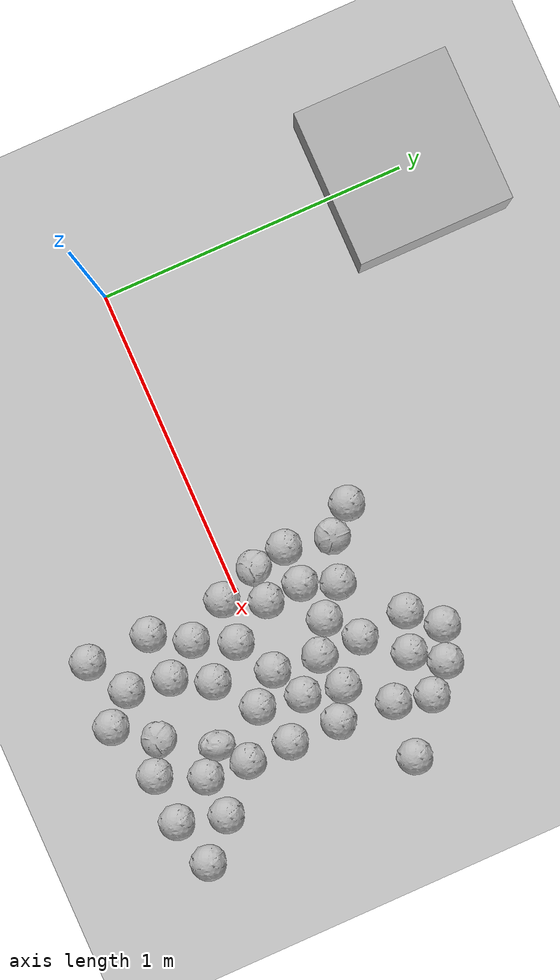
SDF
<sdf version="1.6">
 <world name="default">
  <model name="ground_plane">
   <static>1</static>
   <link name="link">
    <collision name="collision">
     <geometry><plane><normal>0 0 1</normal><size>100 100</size></plane></geometry>
     <surface>
      <contact><collide_bitmask>65535</collide_bitmask></contact>
      <friction><ode><mu>100</mu><mu2>50</mu2></ode></friction>
     </surface>
    </collision>
    <visual name="visual">
     <cast_shadows>0</cast_shadows>
     <geometry><plane><normal>0 0 1</normal><size>100 100</size></plane></geometry>
     <material>
      <script><uri>file://media/materials/scripts/gazebo.material</uri><name>Gazebo/Grey</name></script>
     </material>
    </visual>
   </link>
  </model>
  <light name="sun" type="directional">
   <pose>0 0 10 0 -0 0</pose>
   <diffuse>0.8 0.8 0.8 1</diffuse>
   <specular>0.2 0.2 0.2 1</specular>
   <attenuation>
    <range>1000</range>
    <constant>0.9</constant>
    <linear>0.01</linear>
    <quadratic>0.001</quadratic>
   </attenuation>
   <direction>-0.5 0.1 -0.9</direction>
  </light>
  <model name="mytable">
   <link name="link">
    <inertial>
     <mass>1</mass>
     <inertia><ixx>0.083</ixx><ixy>0</ixy><ixz>0</ixz><iyy>0.083</iyy><iyz>0</iyz><izz>0.083</izz></inertia>
    </inertial>
    <collision name="collision"><geometry><box><size>0.5 0.5 0.2</size></box></geometry></collision>
    <visual name="visual"><geometry><box><size>0.5 0.5 0.2</size></box></geometry></visual>
   </link>
   <pose>0 1 0.1 0 -0 0</pose>
  </model>
  <gravity>0 0 -9.8</gravity>
  <magnetic_field>6e-06 2.3e-05 -4.2e-05</magnetic_field>
  <atmosphere type="adiabatic"/>
  <physics name="default_physics" default="0" type="ode">
   <max_step_size>0.001</max_step_size>
   <real_time_factor>1</real_time_factor>
   <real_time_update_rate>1000</real_time_update_rate>
  </physics>
  <scene><ambient>0.4 0.4 0.4 1</ambient><background>0.7 0.7 0.7 1</background><shadows>1</shadows></scene>
  <audio><device>default</device></audio>
  <spherical_coordinates>
   <surface_model>EARTH_WGS84</surface_model>
   <latitude_deg>0</latitude_deg>
   <longitude_deg>0</longitude_deg>
   <elevation>0</elevation>
   <heading_deg>0</heading_deg>
  </spherical_coordinates>
  <model name="cabbage_clone_0">
   <link name="link">
    <inertial>
     <mass>1.5</mass>
     <inertia>
      <ixx>0.0017004</ixx>
      <ixy>0</ixy>
      <ixz>0</ixz>
      <iyy>0.0019839</iyy>
      <iyz>0</iyz>
      <izz>0.0016659</izz>
     </inertia>
    </inertial>
    <collision name="collision">
     <geometry>
      <mesh><scale>0.001 0.001 0.001</scale><uri>model://cabbage/cabbage_single.dae</uri></mesh>
     </geometry>
     <surface>
      <friction><ode><mu>0.6</mu><mu2>0.6</mu2></ode></friction>
      <contact><ode><max_vel>0.1</max_vel><min_depth>0.0001</min_depth></ode></contact>
     </surface>
    </collision>
    <visual name="visual">
     <geometry>
      <mesh><scale>0.001 0.001 0.001</scale><uri>model://cabbage/cabbage_single.dae</uri></mesh>
     </geometry>
     <material><script><uri>model://cabbage/texture.material</uri><name>CabbageTexture</name></script></material>
    </visual>
   </link>
   <pose>1.52906 0.426172 0.051369 1.57002 0.009069 0.30066</pose>
  </model>
  <model name="cabbage_clone_1">
   <link name="link">
    <inertial>
     <mass>1.5</mass>
     <inertia>
      <ixx>0.0017004</ixx>
      <ixy>0</ixy>
      <ixz>0</ixz>
      <iyy>0.0019839</iyy>
      <iyz>0</iyz>
      <izz>0.0016659</izz>
     </inertia>
    </inertial>
    <collision name="collision">
     <geometry>
      <mesh><scale>0.001 0.001 0.001</scale><uri>model://cabbage/cabbage_single.dae</uri></mesh>
     </geometry>
     <surface>
      <friction><ode><mu>0.6</mu><mu2>0.6</mu2></ode></friction>
      <contact><ode><max_vel>0.1</max_vel><min_depth>0.0001</min_depth></ode></contact>
     </surface>
    </collision>
    <visual name="visual">
     <geometry>
      <mesh><scale>0.001 0.001 0.001</scale><uri>model://cabbage/cabbage_single.dae</uri></mesh>
     </geometry>
     <material><script><uri>model://cabbage/texture.material</uri><name>CabbageTexture</name></script></material>
    </visual>
   </link>
   <pose>1.49952 0.310143 0.051511 1.57609 0.008615 0.501607</pose>
  </model>
  <model name="cabbage_clone_2">
   <link name="link">
    <inertial>
     <mass>1.5</mass>
     <inertia>
      <ixx>0.0017004</ixx>
      <ixy>0</ixy>
      <ixz>0</ixz>
      <iyy>0.0019839</iyy>
      <iyz>0</iyz>
      <izz>0.0016659</izz>
     </inertia>
    </inertial>
    <collision name="collision">
     <geometry>
      <mesh><scale>0.001 0.001 0.001</scale><uri>model://cabbage/cabbage_single.dae</uri></mesh>
     </geometry>
     <surface>
      <friction><ode><mu>0.6</mu><mu2>0.6</mu2></ode></friction>
      <contact><ode><max_vel>0.1</max_vel><min_depth>0.0001</min_depth></ode></contact>
     </surface>
    </collision>
    <visual name="visual">
     <geometry>
      <mesh><scale>0.001 0.001 0.001</scale><uri>model://cabbage/cabbage_single.dae</uri></mesh>
     </geometry>
     <material><script><uri>model://cabbage/texture.material</uri><name>CabbageTexture</name></script></material>
    </visual>
   </link>
   <pose>1.39189 0.188309 0.051485 1.57221 0.00887 0.735737</pose>
  </model>
  <model name="cabbage_clone_3">
   <link name="link">
    <inertial>
     <mass>1.5</mass>
     <inertia>
      <ixx>0.0017004</ixx>
      <ixy>0</ixy>
      <ixz>0</ixz>
      <iyy>0.0019839</iyy>
      <iyz>0</iyz>
      <izz>0.0016659</izz>
     </inertia>
    </inertial>
    <collision name="collision">
     <geometry>
      <mesh><scale>0.001 0.001 0.001</scale><uri>model://cabbage/cabbage_single.dae</uri></mesh>
     </geometry>
     <surface>
      <friction><ode><mu>0.6</mu><mu2>0.6</mu2></ode></friction>
      <contact><ode><max_vel>0.1</max_vel><min_depth>0.0001</min_depth></ode></contact>
     </surface>
    </collision>
    <visual name="visual">
     <geometry>
      <mesh><scale>0.001 0.001 0.001</scale><uri>model://cabbage/cabbage_single.dae</uri></mesh>
     </geometry>
     <material><script><uri>model://cabbage/texture.material</uri><name>CabbageTexture</name></script></material>
    </visual>
   </link>
   <pose>1.38151 0.415774 0.051507 1.57635 0.008902 0.394124</pose>
  </model>
  <model name="cabbage_clone_4">
   <link name="link">
    <inertial>
     <mass>1.5</mass>
     <inertia>
      <ixx>0.0017004</ixx>
      <ixy>0</ixy>
      <ixz>0</ixz>
      <iyy>0.0019839</iyy>
      <iyz>0</iyz>
      <izz>0.0016659</izz>
     </inertia>
    </inertial>
    <collision name="collision">
     <geometry>
      <mesh><scale>0.001 0.001 0.001</scale><uri>model://cabbage/cabbage_single.dae</uri></mesh>
     </geometry>
     <surface>
      <friction><ode><mu>0.6</mu><mu2>0.6</mu2></ode></friction>
      <contact><ode><max_vel>0.1</max_vel><min_depth>0.0001</min_depth></ode></contact>
     </surface>
    </collision>
    <visual name="visual">
     <geometry>
      <mesh><scale>0.001 0.001 0.001</scale><uri>model://cabbage/cabbage_single.dae</uri></mesh>
     </geometry>
     <material><script><uri>model://cabbage/texture.material</uri><name>CabbageTexture</name></script></material>
    </visual>
   </link>
   <pose>1.27797 0.297075 0.051506 1.57631 0.009056 0.109475</pose>
  </model>
  <model name="cabbage_clone_5">
   <link name="link">
    <inertial>
     <mass>1.5</mass>
     <inertia>
      <ixx>0.0017004</ixx>
      <ixy>0</ixy>
      <ixz>0</ixz>
      <iyy>0.0019839</iyy>
      <iyz>0</iyz>
      <izz>0.0016659</izz>
     </inertia>
    </inertial>
    <collision name="collision">
     <geometry>
      <mesh><scale>0.001 0.001 0.001</scale><uri>model://cabbage/cabbage_single.dae</uri></mesh>
     </geometry>
     <surface>
      <friction><ode><mu>0.6</mu><mu2>0.6</mu2></ode></friction>
      <contact><ode><max_vel>0.1</max_vel><min_depth>0.0001</min_depth></ode></contact>
     </surface>
    </collision>
    <visual name="visual">
     <geometry>
      <mesh><scale>0.001 0.001 0.001</scale><uri>model://cabbage/cabbage_single.dae</uri></mesh>
     </geometry>
     <material><script><uri>model://cabbage/texture.material</uri><name>CabbageTexture</name></script></material>
    </visual>
   </link>
   <pose>1.48674 0.130875 0.052208 1.6565 0.033004 -0.023879</pose>
  </model>
  <model name="cabbage_clone_8">
   <link name="link">
    <inertial>
     <mass>1.5</mass>
     <inertia>
      <ixx>0.0017004</ixx>
      <ixy>0</ixy>
      <ixz>0</ixz>
      <iyy>0.0019839</iyy>
      <iyz>0</iyz>
      <izz>0.0016659</izz>
     </inertia>
    </inertial>
    <collision name="collision">
     <geometry>
      <mesh><scale>0.001 0.001 0.001</scale><uri>model://cabbage/cabbage_single.dae</uri></mesh>
     </geometry>
     <surface>
      <friction><ode><mu>0.6</mu><mu2>0.6</mu2></ode></friction>
      <contact><ode><max_vel>0.1</max_vel><min_depth>0.0001</min_depth></ode></contact>
     </surface>
    </collision>
    <visual name="visual">
     <geometry>
      <mesh><scale>0.001 0.001 0.001</scale><uri>model://cabbage/cabbage_single.dae</uri></mesh>
     </geometry>
     <material><script><uri>model://cabbage/texture.material</uri><name>CabbageTexture</name></script></material>
    </visual>
   </link>
   <pose>1.45077 0.505983 0.051513 1.57591 0.008671 0.446285</pose>
  </model>
  <model name="cabbage_clone_9">
   <link name="link">
    <inertial>
     <mass>1.5</mass>
     <inertia>
      <ixx>0.0017004</ixx>
      <ixy>0</ixy>
      <ixz>0</ixz>
      <iyy>0.0019839</iyy>
      <iyz>0</iyz>
      <izz>0.0016659</izz>
     </inertia>
    </inertial>
    <collision name="collision">
     <geometry>
      <mesh><scale>0.001 0.001 0.001</scale><uri>model://cabbage/cabbage_single.dae</uri></mesh>
     </geometry>
     <surface>
      <friction><ode><mu>0.6</mu><mu2>0.6</mu2></ode></friction>
      <contact><ode><max_vel>0.1</max_vel><min_depth>0.0001</min_depth></ode></contact>
     </surface>
    </collision>
    <visual name="visual">
     <geometry>
      <mesh><scale>0.001 0.001 0.001</scale><uri>model://cabbage/cabbage_single.dae</uri></mesh>
     </geometry>
     <material><script><uri>model://cabbage/texture.material</uri><name>CabbageTexture</name></script></material>
    </visual>
   </link>
   <pose>1.26155 0.455643 0.051426 1.57583 0.009737 0.402558</pose>
  </model>
  <model name="cabbage_clone_10">
   <link name="link">
    <inertial>
     <mass>1.5</mass>
     <inertia>
      <ixx>0.0017004</ixx>
      <ixy>0</ixy>
      <ixz>0</ixz>
      <iyy>0.0019839</iyy>
      <iyz>0</iyz>
      <izz>0.0016659</izz>
     </inertia>
    </inertial>
    <collision name="collision">
     <geometry>
      <mesh><scale>0.001 0.001 0.001</scale><uri>model://cabbage/cabbage_single.dae</uri></mesh>
     </geometry>
     <surface>
      <friction><ode><mu>0.6</mu><mu2>0.6</mu2></ode></friction>
      <contact><ode><max_vel>0.1</max_vel><min_depth>0.0001</min_depth></ode></contact>
     </surface>
    </collision>
    <visual name="visual">
     <geometry>
      <mesh><scale>0.001 0.001 0.001</scale><uri>model://cabbage/cabbage_single.dae</uri></mesh>
     </geometry>
     <material><script><uri>model://cabbage/texture.material</uri><name>CabbageTexture</name></script></material>
    </visual>
   </link>
   <pose>1.2775 0.159651 0.051508 1.57634 0.008797 0.888912</pose>
  </model>
  <model name="cabbage_clone_12">
   <link name="link">
    <inertial>
     <mass>1.5</mass>
     <inertia>
      <ixx>0.0017004</ixx>
      <ixy>0</ixy>
      <ixz>0</ixz>
      <iyy>0.0019839</iyy>
      <iyz>0</iyz>
      <izz>0.0016659</izz>
     </inertia>
    </inertial>
    <collision name="collision">
     <geometry>
      <mesh><scale>0.001 0.001 0.001</scale><uri>model://cabbage/cabbage_single.dae</uri></mesh>
     </geometry>
     <surface>
      <friction><ode><mu>0.6</mu><mu2>0.6</mu2></ode></friction>
      <contact><ode><max_vel>0.1</max_vel><min_depth>0.0001</min_depth></ode></contact>
     </surface>
    </collision>
    <visual name="visual">
     <geometry>
      <mesh><scale>0.001 0.001 0.001</scale><uri>model://cabbage/cabbage_single.dae</uri></mesh>
     </geometry>
     <material><script><uri>model://cabbage/texture.material</uri><name>CabbageTexture</name></script></material>
    </visual>
   </link>
   <pose>1.18199 0.219757 0.051508 1.57628 0.008874 0.418808</pose>
  </model>
  <model name="cabbage_clone_16">
   <link name="link">
    <inertial>
     <mass>1.5</mass>
     <inertia>
      <ixx>0.0017004</ixx>
      <ixy>0</ixy>
      <ixz>0</ixz>
      <iyy>0.0019839</iyy>
      <iyz>0</iyz>
      <izz>0.0016659</izz>
     </inertia>
    </inertial>
    <collision name="collision">
     <geometry>
      <mesh><scale>0.001 0.001 0.001</scale><uri>model://cabbage/cabbage_single.dae</uri></mesh>
     </geometry>
     <surface>
      <friction><ode><mu>0.6</mu><mu2>0.6</mu2></ode></friction>
      <contact><ode><max_vel>0.1</max_vel><min_depth>0.0001</min_depth></ode></contact>
     </surface>
    </collision>
    <visual name="visual">
     <geometry>
      <mesh><scale>0.001 0.001 0.001</scale><uri>model://cabbage/cabbage_single.dae</uri></mesh>
     </geometry>
     <material><script><uri>model://cabbage/texture.material</uri><name>CabbageTexture</name></script></material>
    </visual>
   </link>
   <pose>1.34468 0.543311 0.051508 1.57638 0.008858 0.46186</pose>
  </model>
  <model name="cabbage_clone_17">
   <link name="link">
    <inertial>
     <mass>1.5</mass>
     <inertia>
      <ixx>0.0017004</ixx>
      <ixy>0</ixy>
      <ixz>0</ixz>
      <iyy>0.0019839</iyy>
      <iyz>0</iyz>
      <izz>0.0016659</izz>
     </inertia>
    </inertial>
    <collision name="collision">
     <geometry>
      <mesh><scale>0.001 0.001 0.001</scale><uri>model://cabbage/cabbage_single.dae</uri></mesh>
     </geometry>
     <surface>
      <friction><ode><mu>0.6</mu><mu2>0.6</mu2></ode></friction>
      <contact><ode><max_vel>0.1</max_vel><min_depth>0.0001</min_depth></ode></contact>
     </surface>
    </collision>
    <visual name="visual">
     <geometry>
      <mesh><scale>0.001 0.001 0.001</scale><uri>model://cabbage/cabbage_single.dae</uri></mesh>
     </geometry>
     <material><script><uri>model://cabbage/texture.material</uri><name>CabbageTexture</name></script></material>
    </visual>
   </link>
   <pose>0.960771 0.343214 0.04884 -1.60298 -0.154033 2.96145</pose>
  </model>
  <model name="cabbage_clone_18">
   <link name="link">
    <inertial>
     <mass>1.5</mass>
     <inertia>
      <ixx>0.0017004</ixx>
      <ixy>0</ixy>
      <ixz>0</ixz>
      <iyy>0.0019839</iyy>
      <iyz>0</iyz>
      <izz>0.0016659</izz>
     </inertia>
    </inertial>
    <collision name="collision">
     <geometry>
      <mesh><scale>0.001 0.001 0.001</scale><uri>model://cabbage/cabbage_single.dae</uri></mesh>
     </geometry>
     <surface>
      <friction><ode><mu>0.6</mu><mu2>0.6</mu2></ode></friction>
      <contact><ode><max_vel>0.1</max_vel><min_depth>0.0001</min_depth></ode></contact>
     </surface>
    </collision>
    <visual name="visual">
     <geometry>
      <mesh><scale>0.001 0.001 0.001</scale><uri>model://cabbage/cabbage_single.dae</uri></mesh>
     </geometry>
     <material><script><uri>model://cabbage/texture.material</uri><name>CabbageTexture</name></script></material>
    </visual>
   </link>
   <pose>1.05358 0.194938 0.051508 1.57634 0.00894 0.207987</pose>
  </model>
  <model name="cabbage_clone_19">
   <link name="link">
    <inertial>
     <mass>1.5</mass>
     <inertia>
      <ixx>0.0017004</ixx>
      <ixy>0</ixy>
      <ixz>0</ixz>
      <iyy>0.0019839</iyy>
      <iyz>0</iyz>
      <izz>0.0016659</izz>
     </inertia>
    </inertial>
    <collision name="collision">
     <geometry>
      <mesh><scale>0.001 0.001 0.001</scale><uri>model://cabbage/cabbage_single.dae</uri></mesh>
     </geometry>
     <surface>
      <friction><ode><mu>0.6</mu><mu2>0.6</mu2></ode></friction>
      <contact><ode><max_vel>0.1</max_vel><min_depth>0.0001</min_depth></ode></contact>
     </surface>
    </collision>
    <visual name="visual">
     <geometry>
      <mesh><scale>0.001 0.001 0.001</scale><uri>model://cabbage/cabbage_single.dae</uri></mesh>
     </geometry>
     <material><script><uri>model://cabbage/texture.material</uri><name>CabbageTexture</name></script></material>
    </visual>
   </link>
   <pose>1.09699 0.302025 0.051508 1.57627 0.008802 0.674136</pose>
  </model>
  <model name="cabbage_clone_22">
   <link name="link">
    <inertial>
     <mass>1.5</mass>
     <inertia>
      <ixx>0.0017004</ixx>
      <ixy>0</ixy>
      <ixz>0</ixz>
      <iyy>0.0019839</iyy>
      <iyz>0</iyz>
      <izz>0.0016659</izz>
     </inertia>
    </inertial>
    <collision name="collision">
     <geometry>
      <mesh><scale>0.001 0.001 0.001</scale><uri>model://cabbage/cabbage_single.dae</uri></mesh>
     </geometry>
     <surface>
      <friction><ode><mu>0.6</mu><mu2>0.6</mu2></ode></friction>
      <contact><ode><max_vel>0.1</max_vel><min_depth>0.0001</min_depth></ode></contact>
     </surface>
    </collision>
    <visual name="visual">
     <geometry>
      <mesh><scale>0.001 0.001 0.001</scale><uri>model://cabbage/cabbage_single.dae</uri></mesh>
     </geometry>
     <material><script><uri>model://cabbage/texture.material</uri><name>CabbageTexture</name></script></material>
    </visual>
   </link>
   <pose>0.886867 0.426022 0.051504 1.57661 0.009046 0.391852</pose>
  </model>
  <model name="cabbage_clone_24">
   <link name="link">
    <inertial>
     <mass>1.5</mass>
     <inertia>
      <ixx>0.0017004</ixx>
      <ixy>0</ixy>
      <ixz>0</ixz>
      <iyy>0.0019839</iyy>
      <iyz>0</iyz>
      <izz>0.0016659</izz>
     </inertia>
    </inertial>
    <collision name="collision">
     <geometry>
      <mesh><scale>0.001 0.001 0.001</scale><uri>model://cabbage/cabbage_single.dae</uri></mesh>
     </geometry>
     <surface>
      <friction><ode><mu>0.6</mu><mu2>0.6</mu2></ode></friction>
      <contact><ode><max_vel>0.1</max_vel><min_depth>0.0001</min_depth></ode></contact>
     </surface>
    </collision>
    <visual name="visual">
     <geometry>
      <mesh><scale>0.001 0.001 0.001</scale><uri>model://cabbage/cabbage_single.dae</uri></mesh>
     </geometry>
     <material><script><uri>model://cabbage/texture.material</uri><name>CabbageTexture</name></script></material>
    </visual>
   </link>
   <pose>0.932092 0.194565 0.051509 1.57596 0.008905 0.410102</pose>
  </model>
  <model name="cabbage_clone_25">
   <link name="link">
    <inertial>
     <mass>1.5</mass>
     <inertia>
      <ixx>0.0017004</ixx>
      <ixy>0</ixy>
      <ixz>0</ixz>
      <iyy>0.0019839</iyy>
      <iyz>0</iyz>
      <izz>0.0016659</izz>
     </inertia>
    </inertial>
    <collision name="collision">
     <geometry>
      <mesh><scale>0.001 0.001 0.001</scale><uri>model://cabbage/cabbage_single.dae</uri></mesh>
     </geometry>
     <surface>
      <friction><ode><mu>0.6</mu><mu2>0.6</mu2></ode></friction>
      <contact><ode><max_vel>0.1</max_vel><min_depth>0.0001</min_depth></ode></contact>
     </surface>
    </collision>
    <visual name="visual">
     <geometry>
      <mesh><scale>0.001 0.001 0.001</scale><uri>model://cabbage/cabbage_single.dae</uri></mesh>
     </geometry>
     <material><script><uri>model://cabbage/texture.material</uri><name>CabbageTexture</name></script></material>
    </visual>
   </link>
   <pose>0.952005 0.08481 0.051943 -1.66603 0.475066 -2.72059</pose>
  </model>
  <model name="cabbage_clone_26">
   <link name="link">
    <inertial>
     <mass>1.5</mass>
     <inertia>
      <ixx>0.0017004</ixx>
      <ixy>0</ixy>
      <ixz>0</ixz>
      <iyy>0.0019839</iyy>
      <iyz>0</iyz>
      <izz>0.0016659</izz>
     </inertia>
    </inertial>
    <collision name="collision">
     <geometry>
      <mesh><scale>0.001 0.001 0.001</scale><uri>model://cabbage/cabbage_single.dae</uri></mesh>
     </geometry>
     <surface>
      <friction><ode><mu>0.6</mu><mu2>0.6</mu2></ode></friction>
      <contact><ode><max_vel>0.1</max_vel><min_depth>0.0001</min_depth></ode></contact>
     </surface>
    </collision>
    <visual name="visual">
     <geometry>
      <mesh><scale>0.001 0.001 0.001</scale><uri>model://cabbage/cabbage_single.dae</uri></mesh>
     </geometry>
     <material><script><uri>model://cabbage/texture.material</uri><name>CabbageTexture</name></script></material>
    </visual>
   </link>
   <pose>1.0594 0.078366 0.051739 1.55845 0.041561 0.36007</pose>
  </model>
  <model name="cabbage_clone_28">
   <link name="link">
    <inertial>
     <mass>1.5</mass>
     <inertia>
      <ixx>0.0017004</ixx>
      <ixy>0</ixy>
      <ixz>0</ixz>
      <iyy>0.0019839</iyy>
      <iyz>0</iyz>
      <izz>0.0016659</izz>
     </inertia>
    </inertial>
    <collision name="collision">
     <geometry>
      <mesh><scale>0.001 0.001 0.001</scale><uri>model://cabbage/cabbage_single.dae</uri></mesh>
     </geometry>
     <surface>
      <friction><ode><mu>0.6</mu><mu2>0.6</mu2></ode></friction>
      <contact><ode><max_vel>0.1</max_vel><min_depth>0.0001</min_depth></ode></contact>
     </surface>
    </collision>
    <visual name="visual">
     <geometry>
      <mesh><scale>0.001 0.001 0.001</scale><uri>model://cabbage/cabbage_single.dae</uri></mesh>
     </geometry>
     <material><script><uri>model://cabbage/texture.material</uri><name>CabbageTexture</name></script></material>
    </visual>
   </link>
   <pose>1.67971 0.300299 0.051504 1.57662 0.009046 0.391848</pose>
  </model>
  <model name="cabbage_clone_30">
   <link name="link">
    <inertial>
     <mass>1.5</mass>
     <inertia>
      <ixx>0.0017004</ixx>
      <ixy>0</ixy>
      <ixz>0</ixz>
      <iyy>0.0019839</iyy>
      <iyz>0</iyz>
      <izz>0.0016659</izz>
     </inertia>
    </inertial>
    <collision name="collision">
     <geometry>
      <mesh><scale>0.001 0.001 0.001</scale><uri>model://cabbage/cabbage_single.dae</uri></mesh>
     </geometry>
     <surface>
      <friction><ode><mu>0.6</mu><mu2>0.6</mu2></ode></friction>
      <contact><ode><max_vel>0.1</max_vel><min_depth>0.0001</min_depth></ode></contact>
     </surface>
    </collision>
    <visual name="visual">
     <geometry>
      <mesh><scale>0.001 0.001 0.001</scale><uri>model://cabbage/cabbage_single.dae</uri></mesh>
     </geometry>
     <material><script><uri>model://cabbage/texture.material</uri><name>CabbageTexture</name></script></material>
    </visual>
   </link>
   <pose>1.36779 0.064631 0.051504 1.57662 0.009047 0.391844</pose>
  </model>
  <model name="cabbage_clone_20_clone_1">
   <link name="link">
    <inertial>
     <mass>1.5</mass>
     <inertia>
      <ixx>0.0017004</ixx>
      <ixy>0</ixy>
      <ixz>0</ixz>
      <iyy>0.0019839</iyy>
      <iyz>0</iyz>
      <izz>0.0016659</izz>
     </inertia>
    </inertial>
    <collision name="collision">
     <geometry>
      <mesh><scale>0.001 0.001 0.001</scale><uri>model://cabbage/cabbage_single.dae</uri></mesh>
     </geometry>
     <surface>
      <friction><ode><mu>0.6</mu><mu2>0.6</mu2></ode></friction>
      <contact><ode><max_vel>0.1</max_vel><min_depth>0.0001</min_depth></ode></contact>
     </surface>
    </collision>
    <visual name="visual">
     <geometry>
      <mesh><scale>0.001 0.001 0.001</scale><uri>model://cabbage/cabbage_single.dae</uri></mesh>
     </geometry>
     <material><script><uri>model://cabbage/texture.material</uri><name>CabbageTexture</name></script></material>
    </visual>
   </link>
   <pose>1.48411 -0.028783 0.051508 1.57631 0.008847 0.301778</pose>
  </model>
  <model name="cabbage_clone_20_clone_2">
   <link name="link">
    <inertial>
     <mass>1.5</mass>
     <inertia>
      <ixx>0.0017004</ixx>
      <ixy>0</ixy>
      <ixz>0</ixz>
      <iyy>0.0019839</iyy>
      <iyz>0</iyz>
      <izz>0.0016659</izz>
     </inertia>
    </inertial>
    <collision name="collision">
     <geometry>
      <mesh><scale>0.001 0.001 0.001</scale><uri>model://cabbage/cabbage_single.dae</uri></mesh>
     </geometry>
     <surface>
      <friction><ode><mu>0.6</mu><mu2>0.6</mu2></ode></friction>
      <contact><ode><max_vel>0.1</max_vel><min_depth>0.0001</min_depth></ode></contact>
     </surface>
    </collision>
    <visual name="visual">
     <geometry>
      <mesh><scale>0.001 0.001 0.001</scale><uri>model://cabbage/cabbage_single.dae</uri></mesh>
     </geometry>
     <material><script><uri>model://cabbage/texture.material</uri><name>CabbageTexture</name></script></material>
    </visual>
   </link>
   <pose>1.34583 -0.076713 0.051508 1.5763 0.008844 0.301809</pose>
  </model>
  <model name="cabbage_clone_20_clone_3">
   <link name="link">
    <inertial>
     <mass>1.5</mass>
     <inertia>
      <ixx>0.0017004</ixx>
      <ixy>0</ixy>
      <ixz>0</ixz>
      <iyy>0.0019839</iyy>
      <iyz>0</iyz>
      <izz>0.0016659</izz>
     </inertia>
    </inertial>
    <collision name="collision">
     <geometry>
      <mesh><scale>0.001 0.001 0.001</scale><uri>model://cabbage/cabbage_single.dae</uri></mesh>
     </geometry>
     <surface>
      <friction><ode><mu>0.6</mu><mu2>0.6</mu2></ode></friction>
      <contact><ode><max_vel>0.1</max_vel><min_depth>0.0001</min_depth></ode></contact>
     </surface>
    </collision>
    <visual name="visual">
     <geometry>
      <mesh><scale>0.001 0.001 0.001</scale><uri>model://cabbage/cabbage_single.dae</uri></mesh>
     </geometry>
     <material><script><uri>model://cabbage/texture.material</uri><name>CabbageTexture</name></script></material>
    </visual>
   </link>
   <pose>1.26166 0.011063 0.051509 1.57614 0.008838 0.261932</pose>
  </model>
  <model name="cabbage_clone_20_clone_4">
   <link name="link">
    <inertial>
     <mass>1.5</mass>
     <inertia>
      <ixx>0.0017004</ixx>
      <ixy>0</ixy>
      <ixz>0</ixz>
      <iyy>0.0019839</iyy>
      <iyz>0</iyz>
      <izz>0.0016659</izz>
     </inertia>
    </inertial>
    <collision name="collision">
     <geometry>
      <mesh><scale>0.001 0.001 0.001</scale><uri>model://cabbage/cabbage_single.dae</uri></mesh>
     </geometry>
     <surface>
      <friction><ode><mu>0.6</mu><mu2>0.6</mu2></ode></friction>
      <contact><ode><max_vel>0.1</max_vel><min_depth>0.0001</min_depth></ode></contact>
     </surface>
    </collision>
    <visual name="visual">
     <geometry>
      <mesh><scale>0.001 0.001 0.001</scale><uri>model://cabbage/cabbage_single.dae</uri></mesh>
     </geometry>
     <material><script><uri>model://cabbage/texture.material</uri><name>CabbageTexture</name></script></material>
    </visual>
   </link>
   <pose>1.1382 -0.056948 0.051509 1.57629 0.008838 0.301874</pose>
  </model>
  <model name="cabbage_clone_20_clone_5">
   <link name="link">
    <inertial>
     <mass>1.5</mass>
     <inertia>
      <ixx>0.0017004</ixx>
      <ixy>0</ixy>
      <ixz>0</ixz>
      <iyy>0.0019839</iyy>
      <iyz>0</iyz>
      <izz>0.0016659</izz>
     </inertia>
    </inertial>
    <collision name="collision">
     <geometry>
      <mesh><scale>0.001 0.001 0.001</scale><uri>model://cabbage/cabbage_single.dae</uri></mesh>
     </geometry>
     <surface>
      <friction><ode><mu>0.6</mu><mu2>0.6</mu2></ode></friction>
      <contact><ode><max_vel>0.1</max_vel><min_depth>0.0001</min_depth></ode></contact>
     </surface>
    </collision>
    <visual name="visual">
     <geometry>
      <mesh><scale>0.001 0.001 0.001</scale><uri>model://cabbage/cabbage_single.dae</uri></mesh>
     </geometry>
     <material><script><uri>model://cabbage/texture.material</uri><name>CabbageTexture</name></script></material>
    </visual>
   </link>
   <pose>1.00215 -0.044192 0.051509 1.57629 0.008836 0.3019</pose>
  </model>
  <model name="cabbage_clone_20_clone_7">
   <link name="link">
    <inertial>
     <mass>1.5</mass>
     <inertia>
      <ixx>0.0017004</ixx>
      <ixy>0</ixy>
      <ixz>0</ixz>
      <iyy>0.0019839</iyy>
      <iyz>0</iyz>
      <izz>0.0016659</izz>
     </inertia>
    </inertial>
    <collision name="collision">
     <geometry>
      <mesh><scale>0.001 0.001 0.001</scale><uri>model://cabbage/cabbage_single.dae</uri></mesh>
     </geometry>
     <surface>
      <friction><ode><mu>0.6</mu><mu2>0.6</mu2></ode></friction>
      <contact><ode><max_vel>0.1</max_vel><min_depth>0.0001</min_depth></ode></contact>
     </surface>
    </collision>
    <visual name="visual">
     <geometry>
      <mesh><scale>0.001 0.001 0.001</scale><uri>model://cabbage/cabbage_single.dae</uri></mesh>
     </geometry>
     <material><script><uri>model://cabbage/texture.material</uri><name>CabbageTexture</name></script></material>
    </visual>
   </link>
   <pose>1.48431 -0.171543 0.051508 1.57527 0.008718 0.688259</pose>
  </model>
  <model name="cabbage_clone_20_clone_8">
   <link name="link">
    <inertial>
     <mass>1.5</mass>
     <inertia>
      <ixx>0.0017004</ixx>
      <ixy>0</ixy>
      <ixz>0</ixz>
      <iyy>0.0019839</iyy>
      <iyz>0</iyz>
      <izz>0.0016659</izz>
     </inertia>
    </inertial>
    <collision name="collision">
     <geometry>
      <mesh><scale>0.001 0.001 0.001</scale><uri>model://cabbage/cabbage_single.dae</uri></mesh>
     </geometry>
     <surface>
      <friction><ode><mu>0.6</mu><mu2>0.6</mu2></ode></friction>
      <contact><ode><max_vel>0.1</max_vel><min_depth>0.0001</min_depth></ode></contact>
     </surface>
    </collision>
    <visual name="visual">
     <geometry>
      <mesh><scale>0.001 0.001 0.001</scale><uri>model://cabbage/cabbage_single.dae</uri></mesh>
     </geometry>
     <material><script><uri>model://cabbage/texture.material</uri><name>CabbageTexture</name></script></material>
    </visual>
   </link>
   <pose>1.60918 -0.298783 0.051508 1.57632 0.008859 0.301652</pose>
  </model>
  <model name="cabbage_clone_20_clone_9">
   <link name="link">
    <inertial>
     <mass>1.5</mass>
     <inertia>
      <ixx>0.0017004</ixx>
      <ixy>0</ixy>
      <ixz>0</ixz>
      <iyy>0.0019839</iyy>
      <iyz>0</iyz>
      <izz>0.0016659</izz>
     </inertia>
    </inertial>
    <collision name="collision">
     <geometry>
      <mesh><scale>0.001 0.001 0.001</scale><uri>model://cabbage/cabbage_single.dae</uri></mesh>
     </geometry>
     <surface>
      <friction><ode><mu>0.6</mu><mu2>0.6</mu2></ode></friction>
      <contact><ode><max_vel>0.1</max_vel><min_depth>0.0001</min_depth></ode></contact>
     </surface>
    </collision>
    <visual name="visual">
     <geometry>
      <mesh><scale>0.001 0.001 0.001</scale><uri>model://cabbage/cabbage_single.dae</uri></mesh>
     </geometry>
     <material><script><uri>model://cabbage/texture.material</uri><name>CabbageTexture</name></script></material>
    </visual>
   </link>
   <pose>1.47672 -0.308354 0.051507 1.57612 0.009145 0.33281</pose>
  </model>
  <model name="cabbage_clone_20_clone_10">
   <link name="link">
    <inertial>
     <mass>1.5</mass>
     <inertia>
      <ixx>0.0017004</ixx>
      <ixy>0</ixy>
      <ixz>0</ixz>
      <iyy>0.0019839</iyy>
      <iyz>0</iyz>
      <izz>0.0016659</izz>
     </inertia>
    </inertial>
    <collision name="collision">
     <geometry>
      <mesh><scale>0.001 0.001 0.001</scale><uri>model://cabbage/cabbage_single.dae</uri></mesh>
     </geometry>
     <surface>
      <friction><ode><mu>0.6</mu><mu2>0.6</mu2></ode></friction>
      <contact><ode><max_vel>0.1</max_vel><min_depth>0.0001</min_depth></ode></contact>
     </surface>
    </collision>
    <visual name="visual">
     <geometry>
      <mesh><scale>0.001 0.001 0.001</scale><uri>model://cabbage/cabbage_single.dae</uri></mesh>
     </geometry>
     <material><script><uri>model://cabbage/texture.material</uri><name>CabbageTexture</name></script></material>
    </visual>
   </link>
   <pose>1.40406 -0.237799 0.060634 -2.79135 1.01257 1.61608</pose>
  </model>
  <model name="cabbage_clone_20_clone_11">
   <link name="link">
    <inertial>
     <mass>1.5</mass>
     <inertia>
      <ixx>0.0017004</ixx>
      <ixy>0</ixy>
      <ixz>0</ixz>
      <iyy>0.0019839</iyy>
      <iyz>0</iyz>
      <izz>0.0016659</izz>
     </inertia>
    </inertial>
    <collision name="collision">
     <geometry>
      <mesh><scale>0.001 0.001 0.001</scale><uri>model://cabbage/cabbage_single.dae</uri></mesh>
     </geometry>
     <surface>
      <friction><ode><mu>0.6</mu><mu2>0.6</mu2></ode></friction>
      <contact><ode><max_vel>0.1</max_vel><min_depth>0.0001</min_depth></ode></contact>
     </surface>
    </collision>
    <visual name="visual">
     <geometry>
      <mesh><scale>0.001 0.001 0.001</scale><uri>model://cabbage/cabbage_single.dae</uri></mesh>
     </geometry>
     <material><script><uri>model://cabbage/texture.material</uri><name>CabbageTexture</name></script></material>
    </visual>
   </link>
   <pose>1.07724 -0.180124 0.051508 1.57632 0.008859 0.301653</pose>
  </model>
  <model name="cabbage_clone_20_clone_12">
   <link name="link">
    <inertial>
     <mass>1.5</mass>
     <inertia>
      <ixx>0.0017004</ixx>
      <ixy>0</ixy>
      <ixz>0</ixz>
      <iyy>0.0019839</iyy>
      <iyz>0</iyz>
      <izz>0.0016659</izz>
     </inertia>
    </inertial>
    <collision name="collision">
     <geometry>
      <mesh><scale>0.001 0.001 0.001</scale><uri>model://cabbage/cabbage_single.dae</uri></mesh>
     </geometry>
     <surface>
      <friction><ode><mu>0.6</mu><mu2>0.6</mu2></ode></friction>
      <contact><ode><max_vel>0.1</max_vel><min_depth>0.0001</min_depth></ode></contact>
     </surface>
    </collision>
    <visual name="visual">
     <geometry>
      <mesh><scale>0.001 0.001 0.001</scale><uri>model://cabbage/cabbage_single.dae</uri></mesh>
     </geometry>
     <material><script><uri>model://cabbage/texture.material</uri><name>CabbageTexture</name></script></material>
    </visual>
   </link>
   <pose>1.15642 -0.287253 0.051508 1.57632 0.008858 0.301653</pose>
  </model>
  <model name="cabbage_clone_20_clone_13">
   <link name="link">
    <inertial>
     <mass>1.5</mass>
     <inertia>
      <ixx>0.0017004</ixx>
      <ixy>0</ixy>
      <ixz>0</ixz>
      <iyy>0.0019839</iyy>
      <iyz>0</iyz>
      <izz>0.0016659</izz>
     </inertia>
    </inertial>
    <collision name="collision">
     <geometry>
      <mesh><scale>0.001 0.001 0.001</scale><uri>model://cabbage/cabbage_single.dae</uri></mesh>
     </geometry>
     <surface>
      <friction><ode><mu>0.6</mu><mu2>0.6</mu2></ode></friction>
      <contact><ode><max_vel>0.1</max_vel><min_depth>0.0001</min_depth></ode></contact>
     </surface>
    </collision>
    <visual name="visual">
     <geometry>
      <mesh><scale>0.001 0.001 0.001</scale><uri>model://cabbage/cabbage_single.dae</uri></mesh>
     </geometry>
     <material><script><uri>model://cabbage/texture.material</uri><name>CabbageTexture</name></script></material>
    </visual>
   </link>
   <pose>1.00766 -0.293446 0.051508 1.57631 0.008858 0.301654</pose>
  </model>
  <model name="cabbage_clone_20_clone_16">
   <link name="link">
    <inertial>
     <mass>1.5</mass>
     <inertia>
      <ixx>0.0017004</ixx>
      <ixy>0</ixy>
      <ixz>0</ixz>
      <iyy>0.0019839</iyy>
      <iyz>0</iyz>
      <izz>0.0016659</izz>
     </inertia>
    </inertial>
    <collision name="collision">
     <geometry>
      <mesh><scale>0.001 0.001 0.001</scale><uri>model://cabbage/cabbage_single.dae</uri></mesh>
     </geometry>
     <surface>
      <friction><ode><mu>0.6</mu><mu2>0.6</mu2></ode></friction>
      <contact><ode><max_vel>0.1</max_vel><min_depth>0.0001</min_depth></ode></contact>
     </surface>
    </collision>
    <visual name="visual">
     <geometry>
      <mesh><scale>0.001 0.001 0.001</scale><uri>model://cabbage/cabbage_single.dae</uri></mesh>
     </geometry>
     <material><script><uri>model://cabbage/texture.material</uri><name>CabbageTexture</name></script></material>
    </visual>
   </link>
   <pose>1.01005 -0.497861 0.051446 1.56773 0.009257 0.301574</pose>
  </model>
  <model name="cabbage_clone_20_clone_17">
   <link name="link">
    <inertial>
     <mass>1.5</mass>
     <inertia>
      <ixx>0.0017004</ixx>
      <ixy>0</ixy>
      <ixz>0</ixz>
      <iyy>0.0019839</iyy>
      <iyz>0</iyz>
      <izz>0.0016659</izz>
     </inertia>
    </inertial>
    <collision name="collision">
     <geometry>
      <mesh><scale>0.001 0.001 0.001</scale><uri>model://cabbage/cabbage_single.dae</uri></mesh>
     </geometry>
     <surface>
      <friction><ode><mu>0.6</mu><mu2>0.6</mu2></ode></friction>
      <contact><ode><max_vel>0.1</max_vel><min_depth>0.0001</min_depth></ode></contact>
     </surface>
    </collision>
    <visual name="visual">
     <geometry>
      <mesh><scale>0.001 0.001 0.001</scale><uri>model://cabbage/cabbage_single.dae</uri></mesh>
     </geometry>
     <material><script><uri>model://cabbage/texture.material</uri><name>CabbageTexture</name></script></material>
    </visual>
   </link>
   <pose>1.22053 -0.170752 0.051508 1.57632 0.008857 0.301664</pose>
  </model>
  <model name="cabbage_clone_20_clone_18">
   <link name="link">
    <inertial>
     <mass>1.5</mass>
     <inertia>
      <ixx>0.0017004</ixx>
      <ixy>0</ixy>
      <ixz>0</ixz>
      <iyy>0.0019839</iyy>
      <iyz>0</iyz>
      <izz>0.0016659</izz>
     </inertia>
    </inertial>
    <collision name="collision">
     <geometry>
      <mesh><scale>0.001 0.001 0.001</scale><uri>model://cabbage/cabbage_single.dae</uri></mesh>
     </geometry>
     <surface>
      <friction><ode><mu>0.6</mu><mu2>0.6</mu2></ode></friction>
      <contact><ode><max_vel>0.1</max_vel><min_depth>0.0001</min_depth></ode></contact>
     </surface>
    </collision>
    <visual name="visual">
     <geometry>
      <mesh><scale>0.001 0.001 0.001</scale><uri>model://cabbage/cabbage_single.dae</uri></mesh>
     </geometry>
     <material><script><uri>model://cabbage/texture.material</uri><name>CabbageTexture</name></script></material>
    </visual>
   </link>
   <pose>1.13616 -0.42328 0.051445 1.56775 0.009246 0.301571</pose>
  </model>
  <model name="cabbage_clone_20_clone_19">
   <link name="link">
    <inertial>
     <mass>1.5</mass>
     <inertia>
      <ixx>0.0017004</ixx>
      <ixy>0</ixy>
      <ixz>0</ixz>
      <iyy>0.0019839</iyy>
      <iyz>0</iyz>
      <izz>0.0016659</izz>
     </inertia>
    </inertial>
    <collision name="collision">
     <geometry>
      <mesh><scale>0.001 0.001 0.001</scale><uri>model://cabbage/cabbage_single.dae</uri></mesh>
     </geometry>
     <surface>
      <friction><ode><mu>0.6</mu><mu2>0.6</mu2></ode></friction>
      <contact><ode><max_vel>0.1</max_vel><min_depth>0.0001</min_depth></ode></contact>
     </surface>
    </collision>
    <visual name="visual">
     <geometry>
      <mesh><scale>0.001 0.001 0.001</scale><uri>model://cabbage/cabbage_single.dae</uri></mesh>
     </geometry>
     <material><script><uri>model://cabbage/texture.material</uri><name>CabbageTexture</name></script></material>
    </visual>
   </link>
   <pose>1.31269 -0.392895 0.051058 -1.74375 0.271901 -2.66599</pose>
  </model>
  <model name="cabbage_clone_20_clone_20">
   <link name="link">
    <inertial>
     <mass>1.5</mass>
     <inertia>
      <ixx>0.0017004</ixx>
      <ixy>0</ixy>
      <ixz>0</ixz>
      <iyy>0.0019839</iyy>
      <iyz>0</iyz>
      <izz>0.0016659</izz>
     </inertia>
    </inertial>
    <collision name="collision">
     <geometry>
      <mesh><scale>0.001 0.001 0.001</scale><uri>model://cabbage/cabbage_single.dae</uri></mesh>
     </geometry>
     <surface>
      <friction><ode><mu>0.6</mu><mu2>0.6</mu2></ode></friction>
      <contact><ode><max_vel>0.1</max_vel><min_depth>0.0001</min_depth></ode></contact>
     </surface>
    </collision>
    <visual name="visual">
     <geometry>
      <mesh><scale>0.001 0.001 0.001</scale><uri>model://cabbage/cabbage_single.dae</uri></mesh>
     </geometry>
     <material><script><uri>model://cabbage/texture.material</uri><name>CabbageTexture</name></script></material>
    </visual>
   </link>
   <pose>1.22101 -0.512445 0.051508 1.57631 0.008858 0.301654</pose>
  </model>
  <model name="cabbage_clone_20_clone_21">
   <link name="link">
    <inertial>
     <mass>1.5</mass>
     <inertia>
      <ixx>0.0017004</ixx>
      <ixy>0</ixy>
      <ixz>0</ixz>
      <iyy>0.0019839</iyy>
      <iyz>0</iyz>
      <izz>0.0016659</izz>
     </inertia>
    </inertial>
    <collision name="collision">
     <geometry>
      <mesh><scale>0.001 0.001 0.001</scale><uri>model://cabbage/cabbage_single.dae</uri></mesh>
     </geometry>
     <surface>
      <friction><ode><mu>0.6</mu><mu2>0.6</mu2></ode></friction>
      <contact><ode><max_vel>0.1</max_vel><min_depth>0.0001</min_depth></ode></contact>
     </surface>
    </collision>
    <visual name="visual">
     <geometry>
      <mesh><scale>0.001 0.001 0.001</scale><uri>model://cabbage/cabbage_single.dae</uri></mesh>
     </geometry>
     <material><script><uri>model://cabbage/texture.material</uri><name>CabbageTexture</name></script></material>
    </visual>
   </link>
   <pose>1.4108 -0.450387 0.0515 1.57549 0.008962 0.28755</pose>
  </model>
  <model name="cabbage_clone_20_clone_22">
   <link name="link">
    <inertial>
     <mass>1.5</mass>
     <inertia>
      <ixx>0.0017004</ixx>
      <ixy>0</ixy>
      <ixz>0</ixz>
      <iyy>0.0019839</iyy>
      <iyz>0</iyz>
      <izz>0.0016659</izz>
     </inertia>
    </inertial>
    <collision name="collision">
     <geometry>
      <mesh><scale>0.001 0.001 0.001</scale><uri>model://cabbage/cabbage_single.dae</uri></mesh>
     </geometry>
     <surface>
      <friction><ode><mu>0.6</mu><mu2>0.6</mu2></ode></friction>
      <contact><ode><max_vel>0.1</max_vel><min_depth>0.0001</min_depth></ode></contact>
     </surface>
    </collision>
    <visual name="visual">
     <geometry>
      <mesh><scale>0.001 0.001 0.001</scale><uri>model://cabbage/cabbage_single.dae</uri></mesh>
     </geometry>
     <material><script><uri>model://cabbage/texture.material</uri><name>CabbageTexture</name></script></material>
    </visual>
   </link>
   <pose>1.56676 -0.446045 0.051508 1.57632 0.008859 0.301652</pose>
  </model>
  <model name="cabbage_clone_20_clone_23">
   <link name="link">
    <inertial>
     <mass>1.5</mass>
     <inertia>
      <ixx>0.0017004</ixx>
      <ixy>0</ixy>
      <ixz>0</ixz>
      <iyy>0.0019839</iyy>
      <iyz>0</iyz>
      <izz>0.0016659</izz>
     </inertia>
    </inertial>
    <collision name="collision">
     <geometry>
      <mesh><scale>0.001 0.001 0.001</scale><uri>model://cabbage/cabbage_single.dae</uri></mesh>
     </geometry>
     <surface>
      <friction><ode><mu>0.6</mu><mu2>0.6</mu2></ode></friction>
      <contact><ode><max_vel>0.1</max_vel><min_depth>0.0001</min_depth></ode></contact>
     </surface>
    </collision>
    <visual name="visual">
     <geometry>
      <mesh><scale>0.001 0.001 0.001</scale><uri>model://cabbage/cabbage_single.dae</uri></mesh>
     </geometry>
     <material><script><uri>model://cabbage/texture.material</uri><name>CabbageTexture</name></script></material>
    </visual>
   </link>
   <pose>1.71883 -0.407833 0.051508 1.57632 0.008858 0.301652</pose>
  </model>
 </world>
</sdf>
